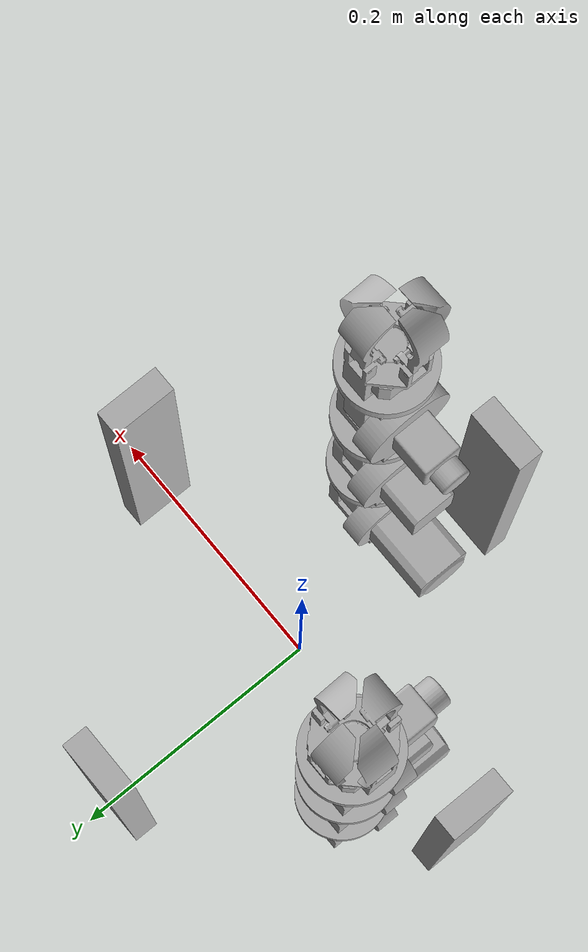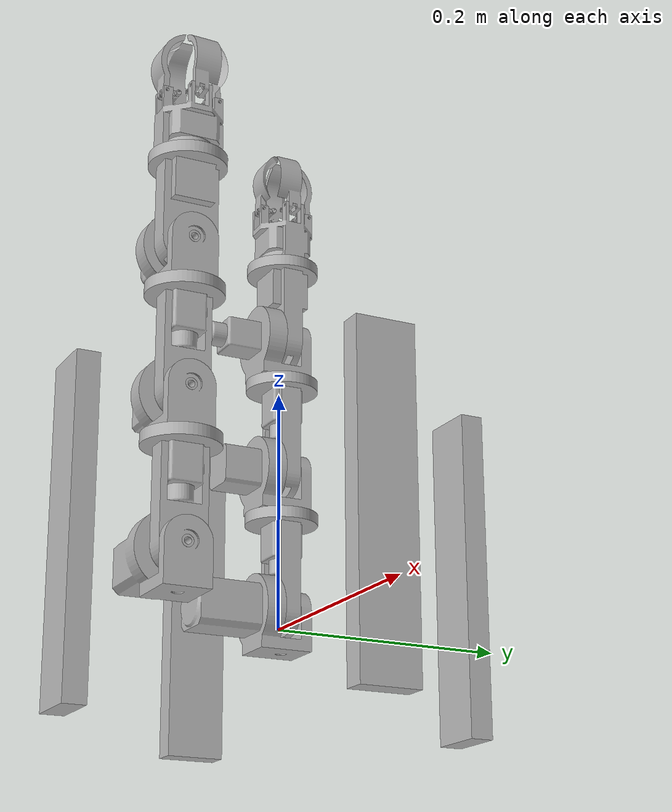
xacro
<?xml version="1.0" ?>
<robot name="arm2v4" xmlns:xacro="http://www.ros.org/wiki/xacro">

<xacro:arg name="include_base_plate" default="false"/>
<xacro:arg name="namespace" default="ARM1"/>

<xacro:property name="namespace" value="$(arg namespace)"/>
<xacro:property name="long_l" value="0.02"/>
<xacro:property name="long_w" value="0.05"/>
<xacro:property name="long_h" value="0.279"/>

<xacro:macro name="arm_urdf" params="arm_param:='ARM'">
  <xacro:property name="arm" default="${arm_param}"/>
  <xacro:include filename="$(find arm2v4_description)/urdf/arm2v4.urdf.xacro"/>
</xacro:macro>

<material name="silver">
  <color rgba="0.700 0.700 0.700 1.000" />
</material>

<link name="world"/>

<link name="base_link">
  <xacro:if value="$(arg include_base_plate)">
    <inertial>
      <origin xyz="-0.01036605995280163 0.008118725780222396 -0.010698521307181049" rpy="0 0 0"/>
      <mass value="0.6714813076324946"/>
      <inertia ixx="0.004693" iyy="0.009008" izz="0.004597" ixy="0.000126" iyz="0.000275" ixz="-0.00051"/>
    </inertial>

  </xacro:if>
</link>

<joint name="world_joint" type="fixed">
  <parent link="world"/>
  <child link="base_link"/>
  <origin xyz="0 0 0" rpy="1.57 0 0"/>
</joint>

<link name="longeron_1">
  <visual>
    <origin xyz="0 0 0" rpy="0 0 0"/>
    <geometry>
      <box size="${long_l} ${long_w} ${long_h}"/>
    </geometry>
    <material name="silver"/>
  </visual>
</link>

<joint name="longeron_1_j" type="fixed">
  <origin xyz="0.175 0 0.0616" rpy="0 0 0"/>
  <parent link="world"/>
  <child link="longeron_1"/>
</joint>

<link name="longeron_2">
  <visual>
    <origin xyz="0 0 0" rpy="0 0 0"/>
    <geometry>
      <box size="${long_l} ${long_w} ${long_h}"/>
    </geometry>
    <material name="silver"/>
  </visual>
</link>

<joint name="longeron_2_j" type="fixed">
  <origin xyz="-0.175 0 0.0616" rpy="0 0 0"/>
  <parent link="world"/>
  <child link="longeron_2"/>
</joint>

<link name="longeron_3">
  <visual>
    <origin xyz="0 0 0" rpy="0 0 0"/>
    <geometry>
      <box size="${long_w} ${long_l} ${long_h}"/>
    </geometry>
    <material name="silver"/>
  </visual>
</link>

<joint name="longeron_3_j" type="fixed">
  <origin xyz="0 0.1725 0.0616" rpy="0 0 0"/>
  <parent link="world"/>
  <child link="longeron_3"/>
</joint>

<link name="longeron_4">
  <visual>
    <origin xyz="0 0 0" rpy="0 0 0"/>
    <geometry>
      <box size="${long_w} ${long_l} ${long_h}"/>
    </geometry>
    <material name="silver"/>
  </visual>
</link>

<joint name="longeron_4_j" type="fixed">
  <origin xyz="0 -0.1775 0.0616" rpy="0 0 0"/>
  <parent link="world"/>
  <child link="longeron_4"/>
</joint>

<!-- Include arm in this namespace -->
<xacro:arm_urdf arm_param=""/>

<!-- Load the other arm for collision avoidance -->
<xacro:if value="${namespace == 'ARM1'}">
    <xacro:arm_urdf arm_param="ARM2"/>
</xacro:if>

<xacro:if value="${namespace == 'ARM2'}">
    <xacro:arm_urdf arm_param="ARM1"/>
</xacro:if>

</robot>

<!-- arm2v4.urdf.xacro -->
<robot name="arm2v4" xmlns:xacro="http://www.ros.org/wiki/xacro">

<link name="${arm}link_1">
  <inertial>
    <origin xyz="0.000994555873334066 0.032192633992419506 0.034631373816010426" rpy="0 0 0"/>
    <mass value="0.14794989873959544"/>
    <inertia ixx="0.000146" iyy="0.000139" izz="6.1e-05" ixy="-0.0" iyz="-1.9e-05" ixz="-4e-06"/>
  </inertial>
  <visual>
    <origin xyz="-0.0551 -0.00635 -0.1101" rpy="0 0 0"/>
    <geometry>
      <mesh filename="package://arm2v4_description/meshes/link_1.stl" scale="0.01 0.01 0.01"/>
    </geometry>
    <material name="silver"/>
  </visual>
  <collision>
    <origin xyz="-0.0551 -0.00635 -0.1101" rpy="0 0 0"/>
    <geometry>
      <mesh filename="package://arm2v4_description/meshes/link_1.stl" scale="0.01 0.01 0.01"/>
    </geometry>
  </collision>
</link>

<link name="${arm}link_2">
  <inertial>
    <origin xyz="-4.2329454017026036e-05 0.04921562557214742 0.0030738533730362907" rpy="0 0 0"/>
    <mass value="0.08725155707785047"/>
    <inertia ixx="9.1e-05" iyy="2.6e-05" izz="9.6e-05" ixy="0.0" iyz="-0.0" ixz="0.0"/>
  </inertial>
  <visual>
    <origin xyz="-0.0731 -0.041967 -0.1101" rpy="0 0 0"/>
    <geometry>
      <mesh filename="package://arm2v4_description/meshes/link_2.stl" scale="0.01 0.01 0.01"/>
    </geometry>
    <material name="silver"/>
  </visual>
  <collision>
    <origin xyz="-0.0731 -0.041967 -0.1101" rpy="0 0 0"/>
    <geometry>
      <mesh filename="package://arm2v4_description/meshes/link_2.stl" scale="0.01 0.01 0.01"/>
    </geometry>
  </collision>
</link>

<link name="${arm}link_3">
  <inertial>
    <origin xyz="-1.3823380757296833e-05 0.03022438867696911 0.0200511494227781" rpy="0 0 0"/>
    <mass value="0.09108039665669564"/>
    <inertia ixx="7.1e-05" iyy="6.2e-05" izz="3.8e-05" ixy="0.0" iyz="-1.2e-05" ixz="0.0"/>
  </inertial>
  <visual>
    <origin xyz="-0.0551 -0.130967 -0.1101" rpy="0 0 0"/>
    <geometry>
      <mesh filename="package://arm2v4_description/meshes/link_3.stl" scale="0.01 0.01 0.01"/>
    </geometry>
    <material name="silver"/>
  </visual>
  <collision>
    <origin xyz="-0.0551 -0.130967 -0.1101" rpy="0 0 0"/>
    <geometry>
      <mesh filename="package://arm2v4_description/meshes/link_3.stl" scale="0.01 0.01 0.01"/>
    </geometry>
  </collision>
</link>

<link name="${arm}link_4">
  <inertial>
    <origin xyz="-4.232946611194832e-05 0.04912810644241655 0.0030738548296062526" rpy="0 0 0"/>
    <mass value="0.08725154796869071"/>
    <inertia ixx="9.1e-05" iyy="2.6e-05" izz="9.6e-05" ixy="-0.0" iyz="-0.0" ixz="0.0"/>
  </inertial>
  <visual>
    <origin xyz="-0.0731 -0.167585 -0.1101" rpy="0 0 0"/>
    <geometry>
      <mesh filename="package://arm2v4_description/meshes/link_4.stl" scale="0.01 0.01 0.01"/>
    </geometry>
    <material name="silver"/>
  </visual>
  <collision>
    <origin xyz="-0.0731 -0.167585 -0.1101" rpy="0 0 0"/>
    <geometry>
      <mesh filename="package://arm2v4_description/meshes/link_4.stl" scale="0.01 0.01 0.01"/>
    </geometry>
  </collision>
</link>

<link name="${arm}link_5">
  <inertial>
    <origin xyz="6.10956164850962e-05 0.029339323281606933 0.01790395437814605" rpy="0 0 0"/>
    <mass value="0.07748637354366847"/>
    <inertia ixx="6.5e-05" iyy="5.7e-05" izz="3.4e-05" ixy="-0.0" iyz="-1e-05" ixz="-0.0"/>
  </inertial>
  <visual>
    <origin xyz="-0.0551 -0.256585 -0.1101" rpy="0 0 0"/>
    <geometry>
      <mesh filename="package://arm2v4_description/meshes/link_5.stl" scale="0.01 0.01 0.01"/>
    </geometry>
    <material name="silver"/>
  </visual>
  <collision>
    <origin xyz="-0.0551 -0.256585 -0.1101" rpy="0 0 0"/>
    <geometry>
      <mesh filename="package://arm2v4_description/meshes/link_5.stl" scale="0.01 0.01 0.01"/>
    </geometry>
  </collision>
</link>

<link name="${arm}link_6">
  <inertial>
    <origin xyz="6.94042323612365e-10 0.04917111509824407 0.0030728246091055456" rpy="0 0 0"/>
    <mass value="0.08703493547283644"/>
    <inertia ixx="9.1e-05" iyy="2.6e-05" izz="9.6e-05" ixy="0.0" iyz="-0.0" ixz="0.0"/>
  </inertial>
  <visual>
    <origin xyz="-0.0731 -0.293202 -0.1101" rpy="0 0 0"/>
    <geometry>
      <mesh filename="package://arm2v4_description/meshes/link_6.stl" scale="0.01 0.01 0.01"/>
    </geometry>
    <material name="silver"/>
  </visual>
  <collision>
    <origin xyz="-0.0731 -0.293202 -0.1101" rpy="0 0 0"/>
    <geometry>
      <mesh filename="package://arm2v4_description/meshes/link_6.stl" scale="0.01 0.01 0.01"/>
    </geometry>
  </collision>
</link>

<link name="${arm}gripper">
  <inertial>
    <origin xyz="-7.99617922246049e-05 -9.373301345926424e-05 0.022688831485682622" rpy="0 0 0"/>
    <mass value="0.06230882557508056"/>
    <inertia ixx="2e-05" iyy="2e-05" izz="1.8e-05" ixy="0.0" iyz="-0.0" ixz="0.0"/>
  </inertial>
  <visual>
    <origin xyz="-0.0551 -0.370702 -0.1101" rpy="0 0 0"/>
    <geometry>
      <mesh filename="package://arm2v4_description/meshes/gripper_base.stl" scale="0.01 0.01 0.01"/>
    </geometry>
    <material name="silver"/>
  </visual>
  <collision>
    <origin xyz="-0.0551 -0.370702 -0.1101" rpy="0 0 0"/>
    <geometry>
      <mesh filename="package://arm2v4_description/meshes/gripper_base.stl" scale="0.01 0.01 0.01"/>
    </geometry>
  </collision>
</link>

<link name="${arm}finger_1">
  <inertial>
    <origin xyz="-0.008642610431029825 -0.0223485533956419 0.01797350009267279" rpy="0 0 0"/>
    <mass value="0.00589987703289726"/>
    <inertia ixx="2e-06" iyy="1e-06" izz="1e-06" ixy="-0.0" iyz="1e-06" ixz="0.0"/>
  </inertial>
  <visual>
    <origin xyz="-0.005959 0.022452 -0.054853" rpy="0 0 0"/>
    <geometry>
      <mesh filename="package://arm2v4_description/meshes/finger_1.stl" scale="0.01 0.01 0.01"/>
    </geometry>
    <material name="silver"/>
  </visual>
  <collision>
    <origin xyz="-0.005959 0.022452 -0.054853" rpy="0 0 0"/>
    <geometry>
      <mesh filename="package://arm2v4_description/meshes/finger_1.stl" scale="0.01 0.01 0.01"/>
    </geometry>
  </collision>
</link>

<link name="${arm}finger_2">
  <inertial>
    <origin xyz="-0.023075113605405432 0.003290870425902617 0.016944927949491317" rpy="0 0 0"/>
    <mass value="0.005899814079558049"/>
    <inertia ixx="1e-06" iyy="2e-06" izz="1e-06" ixy="-0.0" iyz="0.0" ixz="1e-06"/>
  </inertial>
  <visual>
    <origin xyz="0.023955 0.005611 -0.053852" rpy="0 0 0"/>
    <geometry>
      <mesh filename="package://arm2v4_description/meshes/finger_2.stl" scale="0.01 0.01 0.01"/>
    </geometry>
    <material name="silver"/>
  </visual>
  <collision>
    <origin xyz="0.023955 0.005611 -0.053852" rpy="0 0 0"/>
    <geometry>
      <mesh filename="package://arm2v4_description/meshes/finger_2.stl" scale="0.01 0.01 0.01"/>
    </geometry>
  </collision>
</link>

<link name="${arm}finger_3">
  <inertial>
    <origin xyz="0.008090867314456025 0.02343237115984798 0.016811323538146863" rpy="0 0 0"/>
    <mass value="0.005899939849310272"/>
    <inertia ixx="2e-06" iyy="1e-06" izz="1e-06" ixy="-0.0" iyz="-1e-06" ixz="0.0"/>
  </inertial>
  <visual>
    <origin xyz="0.007093 -0.024302 -0.053188" rpy="0 0 0"/>
    <geometry>
      <mesh filename="package://arm2v4_description/meshes/finger_3.stl" scale="0.01 0.01 0.01"/>
    </geometry>
    <material name="silver"/>
  </visual>
  <collision>
    <origin xyz="0.007093 -0.024302 -0.053188" rpy="0 0 0"/>
    <geometry>
      <mesh filename="package://arm2v4_description/meshes/finger_3.stl" scale="0.01 0.01 0.01"/>
    </geometry>
  </collision>
</link>

<link name="${arm}finger_4">
  <inertial>
    <origin xyz="0.022522095224022032 -0.0022060565296590394 0.017840959663214417" rpy="0 0 0"/>
    <mass value="0.005899858594402945"/>
    <inertia ixx="1e-06" iyy="2e-06" izz="1e-06" ixy="-0.0" iyz="-0.0" ixz="-1e-06"/>
  </inertial>
  <visual>
    <origin xyz="-0.022822 -0.00746 -0.054188" rpy="0 0 0"/>
    <geometry>
      <mesh filename="package://arm2v4_description/meshes/finger_4.stl" scale="0.01 0.01 0.01"/>
    </geometry>
    <material name="silver"/>
  </visual>
  <collision>
    <origin xyz="-0.022822 -0.00746 -0.054188" rpy="0 0 0"/>
    <geometry>
      <mesh filename="package://arm2v4_description/meshes/finger_4.stl" scale="0.01 0.01 0.01"/>
    </geometry>
  </collision>
</link>

<joint name="${arm}joint_1" type="revolute">
  <xacro:if value="${namespace == 'ARM1'}">
    <!-- Set ARM1 -->
    <xacro:if value="${arm == ''}">
      <origin xyz="-0.1101 0.007 -0.0551" rpy="0 1.57 0"/>
      <limit upper="0.436332" lower="-1.22173" effort="100" velocity="100"/>
    </xacro:if>
    <!-- Set ARM2 -->
    <xacro:unless value="${arm == ''}">
      <origin xyz="0.0551 0.007 0.1101" rpy="0 0 0"/>
      <limit upper="1.22173" lower="-0.436332" effort="100" velocity="100"/>
    </xacro:unless>
  </xacro:if>

  <xacro:if value="${namespace == 'ARM2'}">
    <xacro:if value="${arm == ''}">
    <!-- Set ARM2 -->
      <origin xyz="0.0551 0.007 0.1101" rpy="0 0 0"/>
      <limit upper="1.22173" lower="-0.436332" effort="100" velocity="100"/>
    </xacro:if>
    <xacro:unless value="${arm == ''}">
    <!-- Set ARM1 -->
      <origin xyz="-0.1101 0.007 -0.0551" rpy="0 1.57 0"/>
      <limit upper="0.436332" lower="-1.22173" effort="100" velocity="100"/>
    </xacro:unless>
  </xacro:if>

  <parent link="base_link"/>
  <child link="${arm}link_1"/>
  <axis xyz="-0.0 -1.0 0.0"/>

</joint>

<joint name="${arm}joint_2" type="revolute">
  <xacro:if value="${namespace == 'ARM1'}">
    <!-- Set ARM1 -->
    <xacro:if value="${arm == ''}">
      <origin xyz="0.018 0.035617 0" rpy="0 0 0"/> <!--rpy="0.0698132 0 0"/-->
    </xacro:if>
  <!-- Set ARM2 -->
    <xacro:unless value="${arm == ''}">
      <origin xyz="0.018 0.035617 0" rpy="0 0 0"/> <!--rpy="-0.0698132 0 0"/-->
    </xacro:unless>
  </xacro:if>

  <xacro:if value="${namespace == 'ARM2'}">
    <!-- Set ARM2 -->
    <xacro:if value="${arm == ''}">
      <origin xyz="0.018 0.035617 0" rpy="0 0 0"/> <!--rpy="-0.0698132 0 0"/-->
    </xacro:if>
    <!-- Set ARM1 -->
    <xacro:unless value="${arm == ''}">
      <origin xyz="0.018 0.035617 0" rpy="0 0 0"/> <!--rpy="0.0698132 0 0"/-->
    </xacro:unless>
  </xacro:if>

  <parent link="${arm}link_1"/>
  <child link="${arm}link_2"/>
  <axis xyz="-1.0 0.0 0.0"/>
  <limit upper="1.570796" lower="-1.570796" effort="100" velocity="100"/>
</joint>

<joint name="${arm}joint_3" type="continuous">
  <xacro:if value="${namespace == 'ARM1'}">
    <!-- Set ARM1 -->
    <xacro:if value="${arm == ''}">
      <origin xyz="-0.018 0.089 0" rpy="0 0 0"/> <!--rpy="0 1.663222557 0"/-->
    </xacro:if>
    <!-- Set ARM2 -->
    <xacro:unless value="${arm == ''}">
      <origin xyz="-0.018 0.089 0" rpy="0 0 0"/> <!--rpy="0 -0.24242623 0"/-->
    </xacro:unless>
  </xacro:if>

  <xacro:if value="${namespace == 'ARM2'}">
    <!-- Set ARM2 -->
    <xacro:if value="${arm == ''}">
      <origin xyz="-0.018 0.089 0" rpy="0 0 0"/> <!--rpy="0 -0.24242623 0"/-->
    </xacro:if>
    <!-- Set ARM1 -->
    <xacro:unless value="${arm == ''}">
      <origin xyz="-0.018 0.089 0" rpy="0 0 0"/> <!--rpy="0 1.663222557 0"/-->
    </xacro:unless>
  </xacro:if>

  <parent link="${arm}link_2"/>
  <child link="${arm}link_3"/>
  <axis xyz="-0.0 1.0 -0.0"/>
</joint>

<joint name="${arm}joint_4" type="revolute">
  <xacro:if value="${namespace == 'ARM1'}">
    <!-- Set ARM1 -->
    <xacro:if value="${arm == ''}">
      <origin xyz="0.018 0.036618 0" rpy="0 0 0"/> <!--rpy="-1.664346 0 0"/-->
      <limit upper="0.0872665" lower="-3.41" effort="100" velocity="100"/>
    </xacro:if>
    <!-- Set ARM2 -->
    <xacro:unless value="${arm == ''}">
      <origin xyz="0.018 0.036618 0" rpy="0 0 0"/> <!--rpy="-1.664346 0 0"/-->
      <limit upper="0.0872665" lower="-3.41" effort="100" velocity="100"/>
    </xacro:unless>
  </xacro:if>

  <xacro:if value="${namespace == 'ARM2'}">
    <!-- Set ARM2 -->
    <xacro:if value="${arm == ''}">
      <origin xyz="0.018 0.036618 0" rpy="0 0 0"/> <!--rpy="-1.664346 0 0"/-->
      <limit upper="0.0872665" lower="-3.41" effort="100" velocity="100"/>
    </xacro:if>
    <!-- Set ARM1 -->
    <xacro:unless value="${arm == ''}">
      <origin xyz="0.018 0.036618 0" rpy="0 0 0"/> <!--rpy="-1.664346 0 0"/-->
       <limit upper="0.0872665" lower="-3.41" effort="100" velocity="100"/>
    </xacro:unless>
  </xacro:if>

  <parent link="${arm}link_3"/>
  <child link="${arm}link_4"/>
  <axis xyz="-1.0 -0.0 0.0"/>

</joint>

<joint name="${arm}joint_5" type="continuous">
  <xacro:if value="${namespace == 'ARM1'}">
    <!-- Set ARM1 -->
    <xacro:if value="${arm == ''}">
      <origin xyz="-0.018 0.089 0" rpy="0 0 0"/> <!--rpy="0 -2.24346 0"/-->
      <limit upper="3.316" lower="-0.523" effort="100" velocity="100"/>
    </xacro:if>
    <!-- Set ARM2 -->
    <xacro:unless value="${arm == ''}">
      <origin xyz="-0.018 0.089 0" rpy="0 0 0"/> <!--rpy="0 -2.24346 0"/-->
      <limit upper="3.316" lower="-0.523" effort="100" velocity="100"/>
    </xacro:unless>
  </xacro:if>

  <xacro:if value="${namespace == 'ARM2'}">
    <!-- Set ARM2 -->
    <xacro:if value="${arm == ''}">
      <origin xyz="-0.018 0.089 0" rpy="0 0 0"/> <!--rpy="0 -2.24346 0"/-->
      <limit upper="3.316" lower="-0.523" effort="100" velocity="100"/>
    </xacro:if>
    <!-- Set ARM1 -->
    <xacro:unless value="${arm == ''}">
      <origin xyz="-0.018 0.089 0" rpy="0 0 0"/> <!--rpy="0 -2.24346 0"/-->
      <limit upper="3.316" lower="-0.523" effort="100" velocity="100"/>
    </xacro:unless>
  </xacro:if>

  <parent link="${arm}link_4"/>
  <child link="${arm}link_5"/>
  <axis xyz="-0.0 1.0 -0.0"/>
</joint>

<joint name="${arm}joint_6" type="revolute">
  <xacro:if value="${namespace == 'ARM1'}">
    <!-- Set ARM1 -->
    <xacro:if value="${arm == ''}">
      <origin xyz="0.018 0.036617 0" rpy="0 0 0"/> <!--rpy="1.6281267 0 0"/-->
      <limit upper="1.57" lower="-1.57" effort="100" velocity="100"/>
    </xacro:if>
    <!-- Set ARM2 -->
    <xacro:unless value="${arm == ''}">
      <origin xyz="0.018 0.036617 0" rpy="0 0 0"/> <!--rpy="1.6281267 0 0"/-->
      <limit upper="3.14" lower="0" effort="100" velocity="100"/>
    </xacro:unless>
  </xacro:if>

  <xacro:if value="${namespace == 'ARM2'}">
    <!-- Set ARM2 -->
    <xacro:if value="${arm == ''}">
      <origin xyz="0.018 0.036617 0" rpy="0 0 0"/> <!--rpy="1.6281267 0 0"/-->
      <limit upper="3.14" lower="0" effort="100" velocity="100"/>
    </xacro:if>
    <!-- Set ARM1 -->
    <xacro:unless value="${arm == ''}">
      <origin xyz="0.018 0.036617 0" rpy="0 0 0"/> <!--rpy="1.6281267 0 0"/-->
      <limit upper="1.57" lower="-1.57" effort="100" velocity="100"/>
    </xacro:unless>
  </xacro:if>

  <parent link="${arm}link_5"/>
  <child link="${arm}link_6"/>
  <axis xyz="-1.0 -0.0 0.0"/>

</joint>

<joint name="${arm}joint_7" type="continuous">
  <origin xyz="-0.018 0.0775 0" rpy="0 0 0"/>
  <parent link="${arm}link_6"/>
  <child link="${arm}gripper"/>
  <axis xyz="-0.0 1.0 0.0"/>
</joint>

<joint name="${arm}gripper_joint_1" type="revolute">
  <origin xyz="0.006125 0.0535 0.0235" rpy="-2.53 0 0"/>
  <parent link="${arm}gripper"/>
  <child link="${arm}finger_1"/>
  <axis xyz="0.999727 0.017623 0.01534"/>
  <limit upper="0.0" lower="-1.134464" effort="100" velocity="100"/>
</joint>

<joint name="${arm}gripper_joint_2" type="revolute">
  <origin xyz="-0.0235 0.0535 0.006125" rpy="-1.53 0 -1"/>
  <parent link="${arm}gripper"/>
  <child link="${arm}finger_2"/>
  <axis xyz="0.017134 -0.999359 0.031436"/>
  <limit upper="0.0" lower="-1.134464" effort="100" velocity="100"/>
</joint>

<joint name="${arm}gripper_joint_3" type="revolute">
  <origin xyz="-0.006125 0.0535 -0.0235" rpy="-0.53 0 0"/>
  <parent link="${arm}gripper"/>
  <child link="${arm}finger_3"/>
  <axis xyz="-0.999727 -0.017623 -0.01534"/>
  <limit upper="0.0" lower="-1.134464" effort="100" velocity="100"/>
</joint>

<joint name="${arm}gripper_joint_4" type="revolute">
  <origin xyz="0.0235 0.0535 -0.006125" rpy="-1.53 0 1"/>
  <parent link="${arm}gripper"/>
  <child link="${arm}finger_4"/>
  <axis xyz="-0.017134 0.999359 -0.031436"/>
  <limit upper="0.0" lower="-1.134464" effort="100" velocity="100"/>
</joint>

</robot>
